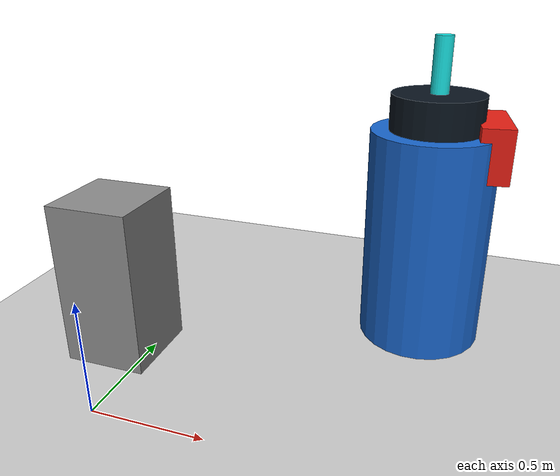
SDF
<?xml version='1.0'?>
<sdf version='1.7'>
  <world name='default'>
    <gui>
      <camera name='user_camera'>
        <pose>0.3699989444420043 0.28787989010815546 6.124447024513961 0.731218099870711 1.5707963267948966 0</pose>
        <view_controller>orbit</view_controller>
        <projection_type>perspective</projection_type>
      </camera>
    </gui>
    <plugin name="socnav_plugin" filename="libSocNavPlugin.so">
      <robot_name>robot</robot_name>
      <trajectory_file>/home/hunav_gz_classic_ws/SocNav3_trajectories/src6/000003895.json</trajectory_file>
      <human_slots>0</human_slots>
      <goal_angle_mesh>
        <angle_threshold>0.35942716787</angle_threshold>
        <uri>/home/hunav_gz_classic_ws/src/socnav_gazebo_reproducer/meshes/000003895_goal_angle_00.stl</uri>
      </goal_angle_mesh>

    </plugin>
    <light name='sun' type='directional'>
      <cast_shadows>1</cast_shadows>
      <pose>0 0 10 0 -0 0</pose>
      <diffuse>0.8 0.8 0.8 1</diffuse>
      <specular>0.2 0.2 0.2 1</specular>
      <attenuation>
        <range>1000</range>
        <constant>0.9</constant>
        <linear>0.01</linear>
        <quadratic>0.001</quadratic>
      </attenuation>
      <direction>-0.5 0.1 -0.9</direction>
      <spot>
        <inner_angle>0</inner_angle>
        <outer_angle>0</outer_angle>
        <falloff>0</falloff>
      </spot>
    </light>
    <model name='ground_plane'>
      <static>1</static>
      <link name='link'>
        <collision name='collision'>
          <geometry>
            <plane>
              <normal>0 0 1</normal>
              <size>100 100</size>
            </plane>
          </geometry>
          <surface>
            <friction>
              <ode>
                <mu>100</mu>
                <mu2>50</mu2>
              </ode>
              <torsional>
                <ode/>
              </torsional>
            </friction>
            <contact>
              <ode/>
            </contact>
            <bounce/>
          </surface>
          <max_contacts>10</max_contacts>
        </collision>
        <visual name='visual'>
          <cast_shadows>0</cast_shadows>
          <geometry>
            <plane>
              <normal>0 0 1</normal>
              <size>100 100</size>
            </plane>
          </geometry>
          <material>
            <script>
              <uri>file://media/materials/scripts/kitchen.material</uri>
              <name>Kitchen/CounterTop_H</name>
            </script>
          </material>
        </visual>
        <self_collide>0</self_collide>
        <enable_wind>0</enable_wind>
        <kinematic>0</kinematic>
      </link>
    </model>
    <gravity>0 0 -9.8</gravity>
    <magnetic_field>6e-06 2.3e-05 -4.2e-05</magnetic_field>
    <atmosphere type='adiabatic'/>
    <physics type='ode'>
      <max_step_size>0.001</max_step_size>
      <real_time_factor>1</real_time_factor>
      <real_time_update_rate>1000</real_time_update_rate>
    </physics>
    <scene>
      <ambient>0.4 0.4 0.4 1</ambient>
      <background>0.7 0.7 0.7 1</background>
      <shadows>1</shadows>
    </scene>
    <audio>
      <device>default</device>
    </audio>
    <wind/>
    <spherical_coordinates>
      <surface_model>EARTH_WGS84</surface_model>
      <latitude_deg>0</latitude_deg>
      <longitude_deg>0</longitude_deg>
      <elevation>0</elevation>
      <heading_deg>0</heading_deg>
    </spherical_coordinates>
    <model name='robot'>
      <pose>1.1570677653980148 1.0676521559517163 0.5 0 0 0.14508538767061152</pose>
      <link name='link'>
        <collision name='collision'>
          <geometry>
            <cylinder>
              <radius>0.28533282647241154</radius>
              <length>1.0</length>
            </cylinder>
          </geometry>
        </collision>
        <visual name='visual'>
          <geometry>
            <cylinder>
              <radius>0.28533282647241154</radius>
              <length>1.0</length>
            </cylinder>
          </geometry>
          <material>
            <ambient>0.1 0.4 0.8 1</ambient>
            <diffuse>0.1 0.4 0.8 1</diffuse>
          </material>
        </visual>
        <visual name='robot_top'>
          <pose>0 0 0.58 0 0 0</pose>
          <geometry><cylinder><radius>0.2054396350601363</radius><length>0.16</length></cylinder></geometry>
          <material><ambient>0.04 0.08 0.12 1</ambient><diffuse>0.04 0.08 0.12 1</diffuse></material>
        </visual>
        <visual name='robot_front'>
          <pose>0.23967957423682568 0 0.44 0 0 0</pose>
          <geometry><box><size>0.13695975670675753 0.3652260178846868 0.24</size></box></geometry>
          <material><ambient>0.9 0.12 0.08 1</ambient><diffuse>0.9 0.12 0.08 1</diffuse></material>
        </visual>
        <visual name='robot_sensor'>
          <pose>0 0 0.78 0 0 0</pose>
          <geometry><cylinder><radius>0.03994659570613762</radius><length>0.24</length></cylinder></geometry>
          <material><ambient>0.1 0.9 0.9 1</ambient><diffuse>0.1 0.9 0.9 1</diffuse></material>
        </visual>
      </link>
    </model>
    <model name="static_object_0">
      <static>true</static>
      <pose>-0.12913403057047357 0.46506425469849155 0.375 0 0 0</pose>
      <link name="link">
        <collision name="collision">
          <geometry>
            <box>
              <size>0.3761477043981263 0.3761477043981263 0.75</size>
            </box>
          </geometry>
        </collision>
        <visual name="visual">

          <geometry>
            <box>
              <size>0.3761477043981263 0.3761477043981263 0.75</size>
            </box>
          </geometry>
          <material>
            <ambient>0.55 0.55 0.55 1</ambient>
            <diffuse>0.55 0.55 0.55 1</diffuse>
          </material>
        </visual>
      </link>
    </model>
    <model name='simple_world_test'>
      <pose>0 0 0 0 -0 0</pose>
      <static>1</static>
    </model>
  </world>
</sdf>
